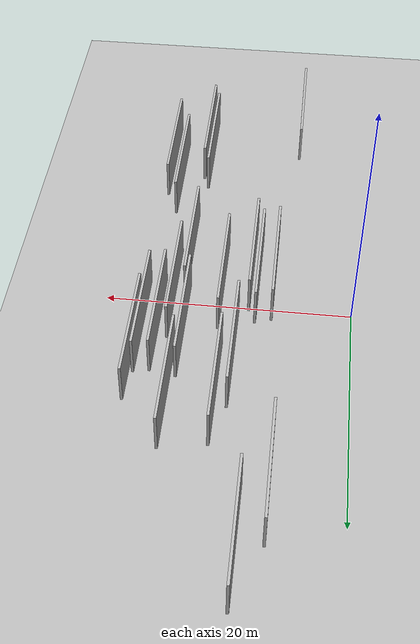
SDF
<?xml version="1.0" encoding="utf-8"?>

<sdf version="1.6">

   <world name="default">

      <gui fullscreen="0">

         <camera name="user_camera">

            <pose>-15 0 4.57585 0 0 0</pose>

            <view_controller>orbit</view_controller>

         </camera>

      </gui>

      <scene>

         <sky>

           <clouds>

             <speed>12</speed>

           </clouds>

         </sky>

         <ambient>0.4 0.4 0.4 1</ambient>

         <background>0.7 0.7 0.7 1</background>

         <shadows>1</shadows>

      </scene>

      <gravity>0 0 -9.8066</gravity>

      <magnetic_field>6e-06 2.3e-05 -4.2e-05</magnetic_field>

      <physics default="0" name="default_physics" type="ode">

         <ode>

            <solver>

               <type>quick</type>

               <iters>10</iters>

               <sor>1.0</sor>

               <use_dynamic_moi_rescaling>0</use_dynamic_moi_rescaling>

            </solver>

            <constraints>

               <cfm>0</cfm>

               <erp>0.2</erp>

               <contact_max_correcting_vel>100</contact_max_correcting_vel>

               <contact_surface_layer>0.001</contact_surface_layer>

            </constraints>

         </ode>

         <max_step_size>0.004</max_step_size>

         <real_time_factor>1</real_time_factor>

         <real_time_update_rate>250</real_time_update_rate>

      </physics>

      <light name="sun" type="directional">

         <cast_shadows>1</cast_shadows>

         <pose>0 0 10 0 0 0</pose>

         <diffuse>0.8 0.8 0.8 1</diffuse>

         <specular>0.2 0.2 0.2 1</specular>

         <attenuation>

            <range>1000</range>

            <constant>0.9</constant>

            <linear>0.01</linear>

            <quadratic>0.001</quadratic>

         </attenuation>

         <direction>-0.5 0.1 -0.9</direction>

      </light>

      <include>

         <name>ground_plane_1</name>

         <uri>model://HANNAS_ground_plane</uri>

         <pose>0 0 0  0 0 0</pose>

      </include>

      <include>

         <name>ground_plane_2</name>

         <uri>model://HANNAS_ground_plane</uri>

         <pose>100 0 0  0 0 0</pose>

      </include>

      <model name="HANNAS_wall_1">

         <static>1</static>

         <pose frame="">16.9923 5.8880 0.0 0.000000 0.000000 1.570796</pose>

         <link name="link">

            <pose frame="">0 0 2.00 0 0 0</pose>

            <collision name="collision">

               <geometry>

                  <box>

                     <size>10.00 0.2 4.00</size>

                  </box>

               </geometry>

               <max_contacts>10</max_contacts>

               <surface>

                  <contact>

                     <ode/>

                  </contact>

                  <bounce/>

                  <friction>

                     <torsional>

                        <ode/>

                     </torsional>

                     <ode/>

                  </friction>

               </surface>

            </collision>

            <visual name="visual">

               <cast_shadows>0</cast_shadows>

               <geometry>

                  <box>

                     <size>10.00 0.2 4.00</size>

                  </box>

               </geometry>

               <material>

                  <script>

                     <uri>model://HANNAS_wall/materials/scripts</uri>

                     <uri>model://HANNAS_wall/materials/textures</uri>

                     <name>vrc/HANNAS_wall</name>

                  </script>

               </material>

            </visual>

            <self_collide>0</self_collide>

            <enable_wind>0</enable_wind>

            <kinematic>0</kinematic>

         </link>

      </model>

      <model name="HANNAS_wall_2">

         <static>1</static>

         <pose frame="">6.4187 -3.4611 0.0 0.000000 0.000000 1.570796</pose>

         <link name="link">

            <pose frame="">0 0 2.00 0 0 0</pose>

            <collision name="collision">

               <geometry>

                  <box>

                     <size>10.00 0.2 4.00</size>

                  </box>

               </geometry>

               <max_contacts>10</max_contacts>

               <surface>

                  <contact>

                     <ode/>

                  </contact>

                  <bounce/>

                  <friction>

                     <torsional>

                        <ode/>

                     </torsional>

                     <ode/>

                  </friction>

               </surface>

            </collision>

            <visual name="visual">

               <cast_shadows>0</cast_shadows>

               <geometry>

                  <box>

                     <size>10.00 0.2 4.00</size>

                  </box>

               </geometry>

               <material>

                  <script>

                     <uri>model://HANNAS_wall/materials/scripts</uri>

                     <uri>model://HANNAS_wall/materials/textures</uri>

                     <name>vrc/HANNAS_wall</name>

                  </script>

               </material>

            </visual>

            <self_collide>0</self_collide>

            <enable_wind>0</enable_wind>

            <kinematic>0</kinematic>

         </link>

      </model>

      <model name="HANNAS_wall_3">

         <static>1</static>

         <pose frame="">13.2913 3.2474 0.0 0.000000 0.000000 1.570796</pose>

         <link name="link">

            <pose frame="">0 0 2.00 0 0 0</pose>

            <collision name="collision">

               <geometry>

                  <box>

                     <size>10.00 0.2 4.00</size>

                  </box>

               </geometry>

               <max_contacts>10</max_contacts>

               <surface>

                  <contact>

                     <ode/>

                  </contact>

                  <bounce/>

                  <friction>

                     <torsional>

                        <ode/>

                     </torsional>

                     <ode/>

                  </friction>

               </surface>

            </collision>

            <visual name="visual">

               <cast_shadows>0</cast_shadows>

               <geometry>

                  <box>

                     <size>10.00 0.2 4.00</size>

                  </box>

               </geometry>

               <material>

                  <script>

                     <uri>model://HANNAS_wall/materials/scripts</uri>

                     <uri>model://HANNAS_wall/materials/textures</uri>

                     <name>vrc/HANNAS_wall</name>

                  </script>

               </material>

            </visual>

            <self_collide>0</self_collide>

            <enable_wind>0</enable_wind>

            <kinematic>0</kinematic>

         </link>

      </model>

      <model name="HANNAS_wall_4">

         <static>1</static>

         <pose frame="">9.1368 5.7983 0.0 0.000000 0.000000 1.570796</pose>

         <link name="link">

            <pose frame="">0 0 2.00 0 0 0</pose>

            <collision name="collision">

               <geometry>

                  <box>

                     <size>10.00 0.2 4.00</size>

                  </box>

               </geometry>

               <max_contacts>10</max_contacts>

               <surface>

                  <contact>

                     <ode/>

                  </contact>

                  <bounce/>

                  <friction>

                     <torsional>

                        <ode/>

                     </torsional>

                     <ode/>

                  </friction>

               </surface>

            </collision>

            <visual name="visual">

               <cast_shadows>0</cast_shadows>

               <geometry>

                  <box>

                     <size>10.00 0.2 4.00</size>

                  </box>

               </geometry>

               <material>

                  <script>

                     <uri>model://HANNAS_wall/materials/scripts</uri>

                     <uri>model://HANNAS_wall/materials/textures</uri>

                     <name>vrc/HANNAS_wall</name>

                  </script>

               </material>

            </visual>

            <self_collide>0</self_collide>

            <enable_wind>0</enable_wind>

            <kinematic>0</kinematic>

         </link>

      </model>

      <model name="HANNAS_wall_5">

         <static>1</static>

         <pose frame="">5.5340 17.2920 0.0 0.000000 0.000000 1.570796</pose>

         <link name="link">

            <pose frame="">0 0 2.00 0 0 0</pose>

            <collision name="collision">

               <geometry>

                  <box>

                     <size>10.00 0.2 4.00</size>

                  </box>

               </geometry>

               <max_contacts>10</max_contacts>

               <surface>

                  <contact>

                     <ode/>

                  </contact>

                  <bounce/>

                  <friction>

                     <torsional>

                        <ode/>

                     </torsional>

                     <ode/>

                  </friction>

               </surface>

            </collision>

            <visual name="visual">

               <cast_shadows>0</cast_shadows>

               <geometry>

                  <box>

                     <size>10.00 0.2 4.00</size>

                  </box>

               </geometry>

               <material>

                  <script>

                     <uri>model://HANNAS_wall/materials/scripts</uri>

                     <uri>model://HANNAS_wall/materials/textures</uri>

                     <name>vrc/HANNAS_wall</name>

                  </script>

               </material>

            </visual>

            <self_collide>0</self_collide>

            <enable_wind>0</enable_wind>

            <kinematic>0</kinematic>

         </link>

      </model>

      <model name="HANNAS_wall_6">

         <static>1</static>

         <pose frame="">14.4668 -0.7148 0.0 0.000000 0.000000 1.570796</pose>

         <link name="link">

            <pose frame="">0 0 2.00 0 0 0</pose>

            <collision name="collision">

               <geometry>

                  <box>

                     <size>10.00 0.2 4.00</size>

                  </box>

               </geometry>

               <max_contacts>10</max_contacts>

               <surface>

                  <contact>

                     <ode/>

                  </contact>

                  <bounce/>

                  <friction>

                     <torsional>

                        <ode/>

                     </torsional>

                     <ode/>

                  </friction>

               </surface>

            </collision>

            <visual name="visual">

               <cast_shadows>0</cast_shadows>

               <geometry>

                  <box>

                     <size>10.00 0.2 4.00</size>

                  </box>

               </geometry>

               <material>

                  <script>

                     <uri>model://HANNAS_wall/materials/scripts</uri>

                     <uri>model://HANNAS_wall/materials/textures</uri>

                     <name>vrc/HANNAS_wall</name>

                  </script>

               </material>

            </visual>

            <self_collide>0</self_collide>

            <enable_wind>0</enable_wind>

            <kinematic>0</kinematic>

         </link>

      </model>

      <model name="HANNAS_wall_7">

         <static>1</static>

         <pose frame="">13.5707 -5.3551 0.0 0.000000 0.000000 1.570796</pose>

         <link name="link">

            <pose frame="">0 0 2.00 0 0 0</pose>

            <collision name="collision">

               <geometry>

                  <box>

                     <size>10.00 0.2 4.00</size>

                  </box>

               </geometry>

               <max_contacts>10</max_contacts>

               <surface>

                  <contact>

                     <ode/>

                  </contact>

                  <bounce/>

                  <friction>

                     <torsional>

                        <ode/>

                     </torsional>

                     <ode/>

                  </friction>

               </surface>

            </collision>

            <visual name="visual">

               <cast_shadows>0</cast_shadows>

               <geometry>

                  <box>

                     <size>10.00 0.2 4.00</size>

                  </box>

               </geometry>

               <material>

                  <script>

                     <uri>model://HANNAS_wall/materials/scripts</uri>

                     <uri>model://HANNAS_wall/materials/textures</uri>

                     <name>vrc/HANNAS_wall</name>

                  </script>

               </material>

            </visual>

            <self_collide>0</self_collide>

            <enable_wind>0</enable_wind>

            <kinematic>0</kinematic>

         </link>

      </model>

      <model name="HANNAS_wall_8">

         <static>1</static>

         <pose frame="">13.1595 -19.3755 0.0 0.000000 0.000000 1.570796</pose>

         <link name="link">

            <pose frame="">0 0 2.00 0 0 0</pose>

            <collision name="collision">

               <geometry>

                  <box>

                     <size>10.00 0.2 4.00</size>

                  </box>

               </geometry>

               <max_contacts>10</max_contacts>

               <surface>

                  <contact>

                     <ode/>

                  </contact>

                  <bounce/>

                  <friction>

                     <torsional>

                        <ode/>

                     </torsional>

                     <ode/>

                  </friction>

               </surface>

            </collision>

            <visual name="visual">

               <cast_shadows>0</cast_shadows>

               <geometry>

                  <box>

                     <size>10.00 0.2 4.00</size>

                  </box>

               </geometry>

               <material>

                  <script>

                     <uri>model://HANNAS_wall/materials/scripts</uri>

                     <uri>model://HANNAS_wall/materials/textures</uri>

                     <name>vrc/HANNAS_wall</name>

                  </script>

               </material>

            </visual>

            <self_collide>0</self_collide>

            <enable_wind>0</enable_wind>

            <kinematic>0</kinematic>

         </link>

      </model>

      <model name="HANNAS_wall_9">

         <static>1</static>

         <pose frame="">10.1270 9.4100 0.0 0.000000 0.000000 1.570796</pose>

         <link name="link">

            <pose frame="">0 0 2.00 0 0 0</pose>

            <collision name="collision">

               <geometry>

                  <box>

                     <size>10.00 0.2 4.00</size>

                  </box>

               </geometry>

               <max_contacts>10</max_contacts>

               <surface>

                  <contact>

                     <ode/>

                  </contact>

                  <bounce/>

                  <friction>

                     <torsional>

                        <ode/>

                     </torsional>

                     <ode/>

                  </friction>

               </surface>

            </collision>

            <visual name="visual">

               <cast_shadows>0</cast_shadows>

               <geometry>

                  <box>

                     <size>10.00 0.2 4.00</size>

                  </box>

               </geometry>

               <material>

                  <script>

                     <uri>model://HANNAS_wall/materials/scripts</uri>

                     <uri>model://HANNAS_wall/materials/textures</uri>

                     <name>vrc/HANNAS_wall</name>

                  </script>

               </material>

            </visual>

            <self_collide>0</self_collide>

            <enable_wind>0</enable_wind>

            <kinematic>0</kinematic>

         </link>

      </model>

      <model name="HANNAS_wall_10">

         <static>1</static>

         <pose frame="">5.1361 -24.4890 0.0 0.000000 0.000000 1.570796</pose>

         <link name="link">

            <pose frame="">0 0 2.00 0 0 0</pose>

            <collision name="collision">

               <geometry>

                  <box>

                     <size>10.00 0.2 4.00</size>

                  </box>

               </geometry>

               <max_contacts>10</max_contacts>

               <surface>

                  <contact>

                     <ode/>

                  </contact>

                  <bounce/>

                  <friction>

                     <torsional>

                        <ode/>

                     </torsional>

                     <ode/>

                  </friction>

               </surface>

            </collision>

            <visual name="visual">

               <cast_shadows>0</cast_shadows>

               <geometry>

                  <box>

                     <size>10.00 0.2 4.00</size>

                  </box>

               </geometry>

               <material>

                  <script>

                     <uri>model://HANNAS_wall/materials/scripts</uri>

                     <uri>model://HANNAS_wall/materials/textures</uri>

                     <name>vrc/HANNAS_wall</name>

                  </script>

               </material>

            </visual>

            <self_collide>0</self_collide>

            <enable_wind>0</enable_wind>

            <kinematic>0</kinematic>

         </link>

      </model>

      <model name="HANNAS_wall_11">

         <static>1</static>

         <pose frame="">7.7196 -3.0271 0.0 0.000000 0.000000 1.570796</pose>

         <link name="link">

            <pose frame="">0 0 2.00 0 0 0</pose>

            <collision name="collision">

               <geometry>

                  <box>

                     <size>10.00 0.2 4.00</size>

                  </box>

               </geometry>

               <max_contacts>10</max_contacts>

               <surface>

                  <contact>

                     <ode/>

                  </contact>

                  <bounce/>

                  <friction>

                     <torsional>

                        <ode/>

                     </torsional>

                     <ode/>

                  </friction>

               </surface>

            </collision>

            <visual name="visual">

               <cast_shadows>0</cast_shadows>

               <geometry>

                  <box>

                     <size>10.00 0.2 4.00</size>

                  </box>

               </geometry>

               <material>

                  <script>

                     <uri>model://HANNAS_wall/materials/scripts</uri>

                     <uri>model://HANNAS_wall/materials/textures</uri>

                     <name>vrc/HANNAS_wall</name>

                  </script>

               </material>

            </visual>

            <self_collide>0</self_collide>

            <enable_wind>0</enable_wind>

            <kinematic>0</kinematic>

         </link>

      </model>

      <model name="HANNAS_wall_12">

         <static>1</static>

         <pose frame="">13.6071 -20.6901 0.0 0.000000 0.000000 1.570796</pose>

         <link name="link">

            <pose frame="">0 0 2.00 0 0 0</pose>

            <collision name="collision">

               <geometry>

                  <box>

                     <size>10.00 0.2 4.00</size>

                  </box>

               </geometry>

               <max_contacts>10</max_contacts>

               <surface>

                  <contact>

                     <ode/>

                  </contact>

                  <bounce/>

                  <friction>

                     <torsional>

                        <ode/>

                     </torsional>

                     <ode/>

                  </friction>

               </surface>

            </collision>

            <visual name="visual">

               <cast_shadows>0</cast_shadows>

               <geometry>

                  <box>

                     <size>10.00 0.2 4.00</size>

                  </box>

               </geometry>

               <material>

                  <script>

                     <uri>model://HANNAS_wall/materials/scripts</uri>

                     <uri>model://HANNAS_wall/materials/textures</uri>

                     <name>vrc/HANNAS_wall</name>

                  </script>

               </material>

            </visual>

            <self_collide>0</self_collide>

            <enable_wind>0</enable_wind>

            <kinematic>0</kinematic>

         </link>

      </model>

      <model name="HANNAS_wall_13">

         <static>1</static>

         <pose frame="">15.6212 -15.6611 0.0 0.000000 0.000000 1.570796</pose>

         <link name="link">

            <pose frame="">0 0 2.00 0 0 0</pose>

            <collision name="collision">

               <geometry>

                  <box>

                     <size>10.00 0.2 4.00</size>

                  </box>

               </geometry>

               <max_contacts>10</max_contacts>

               <surface>

                  <contact>

                     <ode/>

                  </contact>

                  <bounce/>

                  <friction>

                     <torsional>

                        <ode/>

                     </torsional>

                     <ode/>

                  </friction>

               </surface>

            </collision>

            <visual name="visual">

               <cast_shadows>0</cast_shadows>

               <geometry>

                  <box>

                     <size>10.00 0.2 4.00</size>

                  </box>

               </geometry>

               <material>

                  <script>

                     <uri>model://HANNAS_wall/materials/scripts</uri>

                     <uri>model://HANNAS_wall/materials/textures</uri>

                     <name>vrc/HANNAS_wall</name>

                  </script>

               </material>

            </visual>

            <self_collide>0</self_collide>

            <enable_wind>0</enable_wind>

            <kinematic>0</kinematic>

         </link>

      </model>

      <model name="HANNAS_wall_14">

         <static>1</static>

         <pose frame="">8.2997 -4.3257 0.0 0.000000 0.000000 1.570796</pose>

         <link name="link">

            <pose frame="">0 0 2.00 0 0 0</pose>

            <collision name="collision">

               <geometry>

                  <box>

                     <size>10.00 0.2 4.00</size>

                  </box>

               </geometry>

               <max_contacts>10</max_contacts>

               <surface>

                  <contact>

                     <ode/>

                  </contact>

                  <bounce/>

                  <friction>

                     <torsional>

                        <ode/>

                     </torsional>

                     <ode/>

                  </friction>

               </surface>

            </collision>

            <visual name="visual">

               <cast_shadows>0</cast_shadows>

               <geometry>

                  <box>

                     <size>10.00 0.2 4.00</size>

                  </box>

               </geometry>

               <material>

                  <script>

                     <uri>model://HANNAS_wall/materials/scripts</uri>

                     <uri>model://HANNAS_wall/materials/textures</uri>

                     <name>vrc/HANNAS_wall</name>

                  </script>

               </material>

            </visual>

            <self_collide>0</self_collide>

            <enable_wind>0</enable_wind>

            <kinematic>0</kinematic>

         </link>

      </model>

      <model name="HANNAS_wall_15">

         <static>1</static>

         <pose frame="">16.6176 -18.0871 0.0 0.000000 0.000000 1.570796</pose>

         <link name="link">

            <pose frame="">0 0 2.00 0 0 0</pose>

            <collision name="collision">

               <geometry>

                  <box>

                     <size>10.00 0.2 4.00</size>

                  </box>

               </geometry>

               <max_contacts>10</max_contacts>

               <surface>

                  <contact>

                     <ode/>

                  </contact>

                  <bounce/>

                  <friction>

                     <torsional>

                        <ode/>

                     </torsional>

                     <ode/>

                  </friction>

               </surface>

            </collision>

            <visual name="visual">

               <cast_shadows>0</cast_shadows>

               <geometry>

                  <box>

                     <size>10.00 0.2 4.00</size>

                  </box>

               </geometry>

               <material>

                  <script>

                     <uri>model://HANNAS_wall/materials/scripts</uri>

                     <uri>model://HANNAS_wall/materials/textures</uri>

                     <name>vrc/HANNAS_wall</name>

                  </script>

               </material>

            </visual>

            <self_collide>0</self_collide>

            <enable_wind>0</enable_wind>

            <kinematic>0</kinematic>

         </link>

      </model>

      <model name="HANNAS_wall_16">

         <static>1</static>

         <pose frame="">15.3519 2.8704 0.0 0.000000 0.000000 1.570796</pose>

         <link name="link">

            <pose frame="">0 0 2.00 0 0 0</pose>

            <collision name="collision">

               <geometry>

                  <box>

                     <size>10.00 0.2 4.00</size>

                  </box>

               </geometry>

               <max_contacts>10</max_contacts>

               <surface>

                  <contact>

                     <ode/>

                  </contact>

                  <bounce/>

                  <friction>

                     <torsional>

                        <ode/>

                     </torsional>

                     <ode/>

                  </friction>

               </surface>

            </collision>

            <visual name="visual">

               <cast_shadows>0</cast_shadows>

               <geometry>

                  <box>

                     <size>10.00 0.2 4.00</size>

                  </box>

               </geometry>

               <material>

                  <script>

                     <uri>model://HANNAS_wall/materials/scripts</uri>

                     <uri>model://HANNAS_wall/materials/textures</uri>

                     <name>vrc/HANNAS_wall</name>

                  </script>

               </material>

            </visual>

            <self_collide>0</self_collide>

            <enable_wind>0</enable_wind>

            <kinematic>0</kinematic>

         </link>

      </model>

      <model name="HANNAS_wall_17">

         <static>1</static>

         <pose frame="">7.5009 22.3914 0.0 0.000000 0.000000 1.570796</pose>

         <link name="link">

            <pose frame="">0 0 2.00 0 0 0</pose>

            <collision name="collision">

               <geometry>

                  <box>

                     <size>10.00 0.2 4.00</size>

                  </box>

               </geometry>

               <max_contacts>10</max_contacts>

               <surface>

                  <contact>

                     <ode/>

                  </contact>

                  <bounce/>

                  <friction>

                     <torsional>

                        <ode/>

                     </torsional>

                     <ode/>

                  </friction>

               </surface>

            </collision>

            <visual name="visual">

               <cast_shadows>0</cast_shadows>

               <geometry>

                  <box>

                     <size>10.00 0.2 4.00</size>

                  </box>

               </geometry>

               <material>

                  <script>

                     <uri>model://HANNAS_wall/materials/scripts</uri>

                     <uri>model://HANNAS_wall/materials/textures</uri>

                     <name>vrc/HANNAS_wall</name>

                  </script>

               </material>

            </visual>

            <self_collide>0</self_collide>

            <enable_wind>0</enable_wind>

            <kinematic>0</kinematic>

         </link>

      </model>

      <model name="HANNAS_wall_18">

         <static>1</static>

         <pose frame="">10.5896 -2.0782 0.0 0.000000 0.000000 1.570796</pose>

         <link name="link">

            <pose frame="">0 0 2.00 0 0 0</pose>

            <collision name="collision">

               <geometry>

                  <box>

                     <size>10.00 0.2 4.00</size>

                  </box>

               </geometry>

               <max_contacts>10</max_contacts>

               <surface>

                  <contact>

                     <ode/>

                  </contact>

                  <bounce/>

                  <friction>

                     <torsional>

                        <ode/>

                     </torsional>

                     <ode/>

                  </friction>

               </surface>

            </collision>

            <visual name="visual">

               <cast_shadows>0</cast_shadows>

               <geometry>

                  <box>

                     <size>10.00 0.2 4.00</size>

                  </box>

               </geometry>

               <material>

                  <script>

                     <uri>model://HANNAS_wall/materials/scripts</uri>

                     <uri>model://HANNAS_wall/materials/textures</uri>

                     <name>vrc/HANNAS_wall</name>

                  </script>

               </material>

            </visual>

            <self_collide>0</self_collide>

            <enable_wind>0</enable_wind>

            <kinematic>0</kinematic>

         </link>

      </model>

      <model name="HANNAS_wall_19">

         <static>1</static>

         <pose frame="">16.5940 3.1090 0.0 0.000000 0.000000 1.570796</pose>

         <link name="link">

            <pose frame="">0 0 2.00 0 0 0</pose>

            <collision name="collision">

               <geometry>

                  <box>

                     <size>10.00 0.2 4.00</size>

                  </box>

               </geometry>

               <max_contacts>10</max_contacts>

               <surface>

                  <contact>

                     <ode/>

                  </contact>

                  <bounce/>

                  <friction>

                     <torsional>

                        <ode/>

                     </torsional>

                     <ode/>

                  </friction>

               </surface>

            </collision>

            <visual name="visual">

               <cast_shadows>0</cast_shadows>

               <geometry>

                  <box>

                     <size>10.00 0.2 4.00</size>

                  </box>

               </geometry>

               <material>

                  <script>

                     <uri>model://HANNAS_wall/materials/scripts</uri>

                     <uri>model://HANNAS_wall/materials/textures</uri>

                     <name>vrc/HANNAS_wall</name>

                  </script>

               </material>

            </visual>

            <self_collide>0</self_collide>

            <enable_wind>0</enable_wind>

            <kinematic>0</kinematic>

         </link>

      </model>

      <model name="HANNAS_wall_20">

         <static>1</static>

         <pose frame="">13.7775 10.0868 0.0 0.000000 0.000000 1.570796</pose>

         <link name="link">

            <pose frame="">0 0 2.00 0 0 0</pose>

            <collision name="collision">

               <geometry>

                  <box>

                     <size>10.00 0.2 4.00</size>

                  </box>

               </geometry>

               <max_contacts>10</max_contacts>

               <surface>

                  <contact>

                     <ode/>

                  </contact>

                  <bounce/>

                  <friction>

                     <torsional>

                        <ode/>

                     </torsional>

                     <ode/>

                  </friction>

               </surface>

            </collision>

            <visual name="visual">

               <cast_shadows>0</cast_shadows>

               <geometry>

                  <box>

                     <size>10.00 0.2 4.00</size>

                  </box>

               </geometry>

               <material>

                  <script>

                     <uri>model://HANNAS_wall/materials/scripts</uri>

                     <uri>model://HANNAS_wall/materials/textures</uri>

                     <name>vrc/HANNAS_wall</name>

                  </script>

               </material>

            </visual>

            <self_collide>0</self_collide>

            <enable_wind>0</enable_wind>

            <kinematic>0</kinematic>

         </link>

      </model>

   </world>

</sdf>

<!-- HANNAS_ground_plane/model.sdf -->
<sdf version="1.4">
<model name="HANNAS_ground_plane">
  <static>true</static>
    <link name="link">
      <collision name="collision">
        <geometry>
          <plane>
            <normal>0 0 1</normal>
            <size>1000 1000</size>
          </plane>
        </geometry>
        <surface>
          <friction>
            <ode>
              <mu>100</mu>
              <mu2>50</mu2>
            </ode>
          </friction>
        </surface>
      </collision>
      <visual name="visual">
        <cast_shadows>false</cast_shadows>
        <geometry>
          <plane>
            <normal>0 0 1</normal>
            <size>1000 1000</size>
          </plane>
        </geometry>
        <material>
          <script>
            <uri>model://HANNAS_ground_plane/materials/scripts/HANNAS_ground_plane.material</uri>
	    <uri>model://HANNAS_ground_plane/materials/textures</uri>
            <name>HANNASGroundPlane/Image</name>
          </script>
        </material>
      </visual>
    </link>
  </model>
</sdf>
